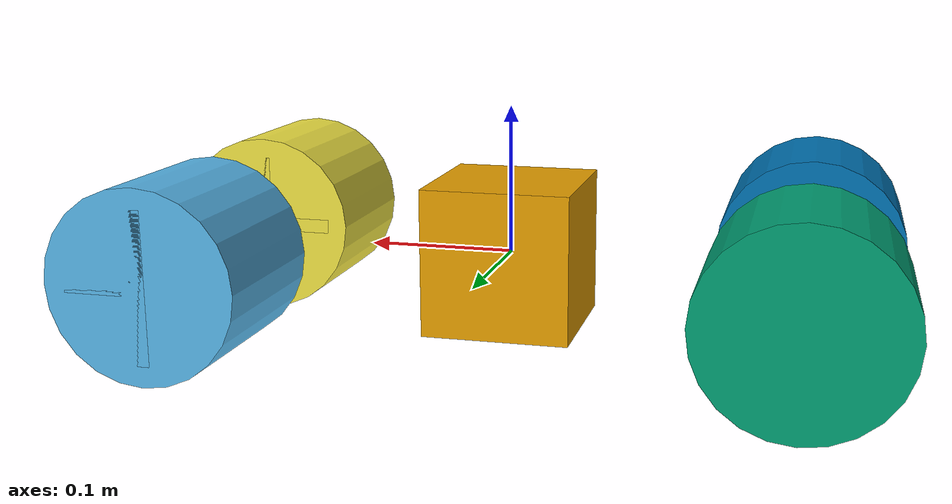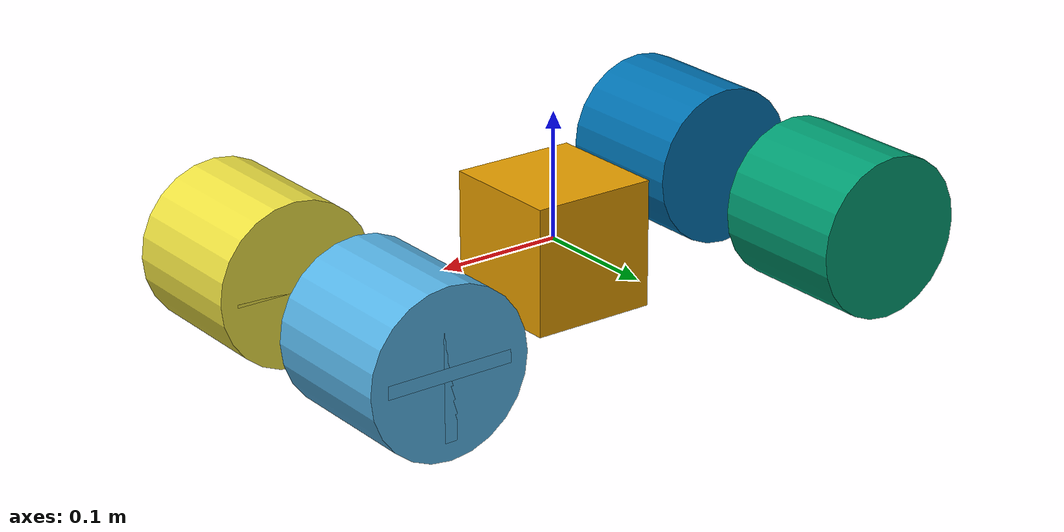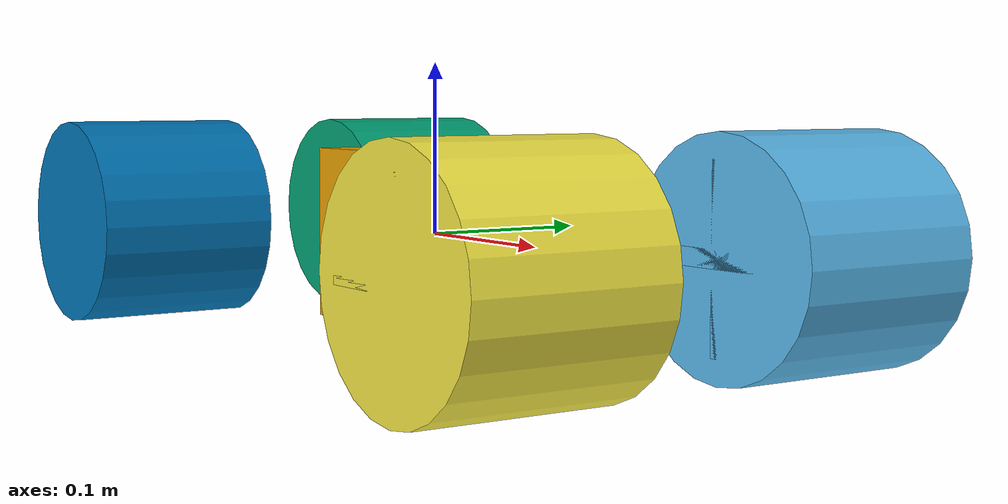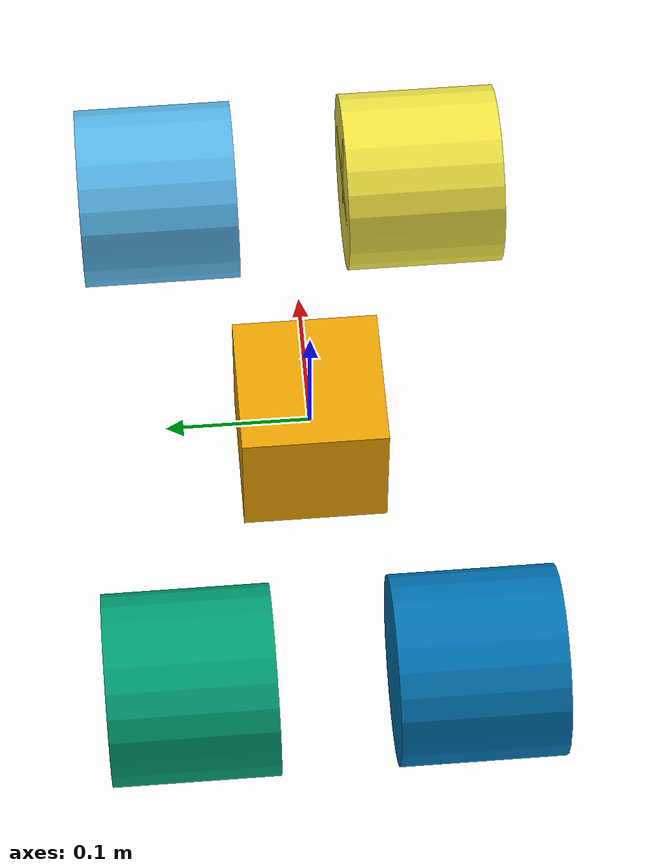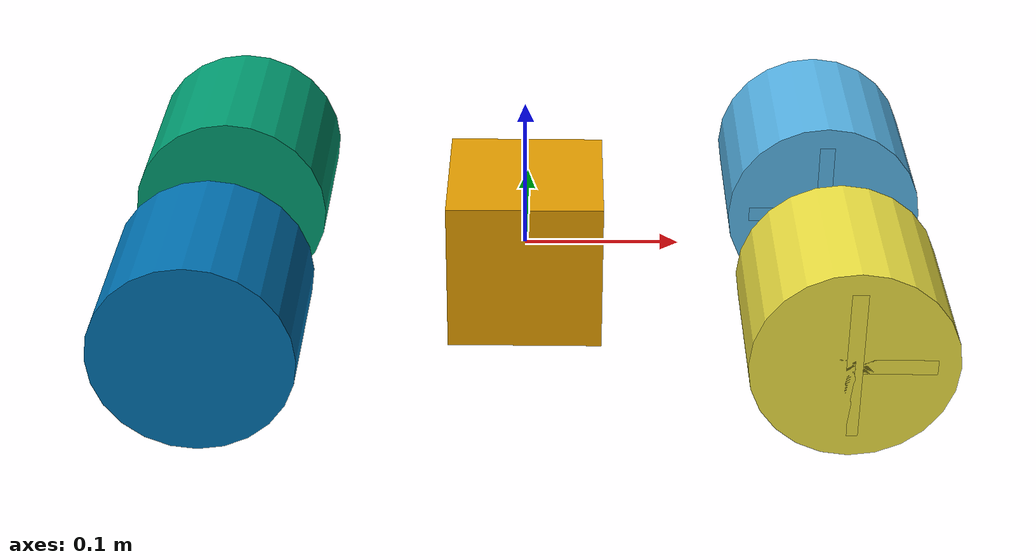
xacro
<robot name="example_track" xmlns:xacro="http://www.ros.org/wiki/xacro">

    <!-- URDF file for general ROS systems such as ros_control, rviz, etc.           -->
    <!-- We define here;                                                             -->
    <!--     * a base_link to be wrapped by the track                                     -->
    <!--     * a sprocket to drive the track                                         -->
    <!--     * an axle and actuator for the sprocket                                 -->
    <!--     * an idler wheel on the other side of the sprocket                      -->
    <!-- Other entities specialized for Gazebo are defined in *_gazebo.urdf.xacro .  -->

    <xacro:macro name="make_box_inertia" params="mass size_x size_y size_z">
        <inertial>
            <mass value="${mass}" />
            <inertia ixx="${mass * (size_y * size_y + size_z * size_z) / 12}" ixy="0" ixz="0" iyy="${mass * (size_z * size_z + size_x * size_x) / 12}" iyz="0" izz="${mass * (size_x * size_x + size_y * size_y) / 12}" />
        </inertial>
    </xacro:macro>

    <xacro:macro name="make_wheel_inertia" params="mass radius length">
        <inertial>
            <mass value="${mass}" />
            <!-- assuming axis of cylinder is y, not z -->
            <inertia ixx="${mass * (radius * radius / 4 + length * length / 12)}" ixy="0" ixz="0" iyy="${mass * radius * radius / 2}" iyz="0" izz="${mass * (radius * radius / 4 + length * length / 12)}" />
        </inertial>
    </xacro:macro>

    <!-- base_link to be wrapped by the track -->

    <link name="base_link">
        <xacro:make_box_inertia mass="1" size_x="0.5" size_y="0.325" size_z="0.1" />

        <visual>
            <geometry>
                <box size="0.1 0.1 0.1" />
            </geometry>
        </visual>

        <collision>
            <geometry>
                <box size="0.1 0.1 0.1" />
            </geometry>
        </collision>
    </link>

    <!-- sprocket driving the track -->

    <link name="sprocket_left">
        <xacro:make_wheel_inertia mass="0.2" radius="0.064" length="0.1115" />

        <visual>
            <origin xyz="0 0 0" rpy="${pi / 2} 0 0" />
            <geometry>
                <cylinder radius="0.064" length="0.1115" />
            </geometry>
        </visual>
        <visual>
            <geometry>
                <box size="0.01 0.1115 0.1" />
            </geometry>
        </visual>
        <visual>
            <geometry>
                <box size="0.1 0.1115 0.01" />
            </geometry>
        </visual>

        <collision>
            <origin xyz="0 0 0" rpy="${pi / 2} 0 0" />
            <geometry>
                <cylinder radius="0.064" length="0.1115" />
            </geometry>
        </collision>
    </link>

    <joint name="sprocket_left_axle" type="continuous">
        <origin xyz="0.2 0.095 0" rpy="0 0 0" />
        <parent link="base_link" />
        <child link="sprocket_left" />
        <axis xyz="0 1 0" />
    </joint>

    <transmission name="sprocket_left_transmission">
        <type>transmission_interface/SimpleTransmission</type>
        <joint name="sprocket_left_axle">
            <hardwareInterface>hardware_interface/VelocityJointInterface</hardwareInterface>
        </joint>
        <actuator name="sprocket_left_actuator">
            <mechanicalReduction>1</mechanicalReduction>
        </actuator>
    </transmission>

    <!-- idler on the other side of the sprocket -->

    <link name="idler_left">
        <xacro:make_wheel_inertia mass="0.2" radius="0.064" length="0.1115" />

        <visual>
            <origin xyz="0 0 0" rpy="${pi / 2} 0 0" />
            <geometry>
                <cylinder radius="0.064" length="0.1115" />
            </geometry>
        </visual>

        <collision>
            <origin xyz="0 0 0" rpy="${pi / 2} 0 0" />
            <geometry>
                <cylinder radius="0.064" length="0.1115" />
            </geometry>
        </collision>
    </link>

    <joint name="idler_left_axle" type="fixed">
        <origin xyz="-0.2 0.095 0" rpy="0 0 0" />
        <parent link="base_link" />
        <child link="idler_left" />
    </joint>

    <!-- sprocket driving the track -->

    <link name="sprocket_right">
        <xacro:make_wheel_inertia mass="0.2" radius="0.064" length="0.1115" />

        <visual>
            <origin xyz="0 0 0" rpy="${pi / 2} 0 0" />
            <geometry>
                <cylinder radius="0.064" length="0.1115" />
            </geometry>
        </visual>
        <visual>
            <geometry>
                <box size="0.01 0.1115 0.1" />
            </geometry>
        </visual>
        <visual>
            <geometry>
                <box size="0.1 0.1115 0.01" />
            </geometry>
        </visual>

        <collision>
            <origin xyz="0 0 0" rpy="${pi / 2} 0 0" />
            <geometry>
                <cylinder radius="0.064" length="0.1115" />
            </geometry>
        </collision>
    </link>

    <joint name="sprocket_right_axle" type="continuous">
        <origin xyz="0.2 -0.095 0" rpy="0 0 0" />
        <parent link="base_link" />
        <child link="sprocket_right" />
        <axis xyz="0 1 0" />
    </joint>

    <transmission name="sprocket_right_transmission">
        <type>transmission_interface/SimpleTransmission</type>
        <joint name="sprocket_right_axle">
            <hardwareInterface>hardware_interface/VelocityJointInterface</hardwareInterface>
        </joint>
        <actuator name="sprocket_right_actuator">
            <mechanicalReduction>1</mechanicalReduction>
        </actuator>
    </transmission>

    <!-- idler on the other side of the sprocket -->

    <link name="idler_right">
        <xacro:make_wheel_inertia mass="0.2" radius="0.064" length="0.1115" />

        <visual>
            <origin xyz="0 0 0" rpy="${pi / 2} 0 0" />
            <geometry>
                <cylinder radius="0.064" length="0.1115" />
            </geometry>
        </visual>

        <collision>
            <origin xyz="0 0 0" rpy="${pi / 2} 0 0" />
            <geometry>
                <cylinder radius="0.064" length="0.1115" />
            </geometry>
        </collision>
    </link>

    <joint name="idler_right_axle" type="fixed">
        <origin xyz="-0.2 -0.095 0" rpy="0 0 0" />
        <parent link="base_link" />
        <child link="idler_right" />
    </joint>

</robot>
